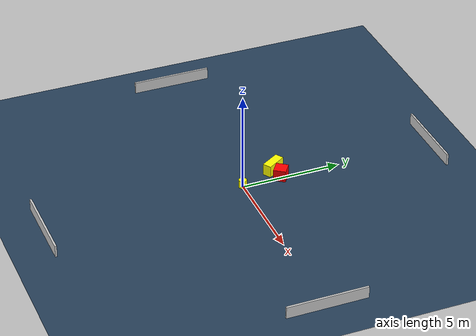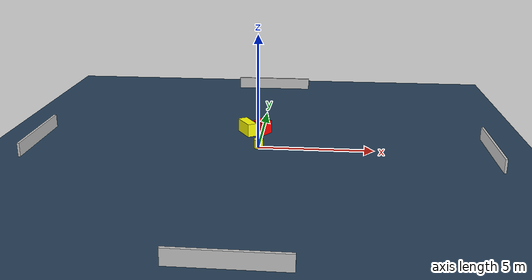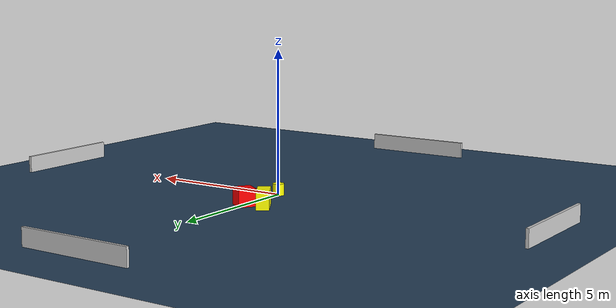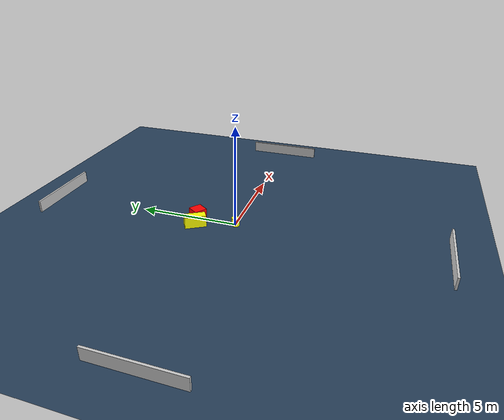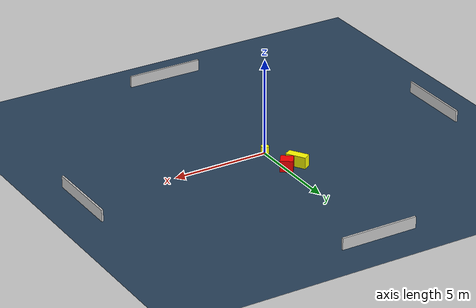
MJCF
<?xml version="1.0" ?>
<mujoco model="generated_environment">
  <option timestep="0.01" integrator="RK4" cone="elliptic"/>
  <default>
    <geom density="1"/>
  </default>
  <asset>
    <texture builtin="gradient" height="3072" name="skybox" rgb1="0.3 0.5 0.7" rgb2="0 0 0" type="skybox" width="512"/>
    <texture builtin="checker" height="300" name="groundplane" rgb1="0.2 0.3 0.4" rgb2="0.1 0.2 0.3" type="2d" width="300"/>
    <material name="groundplane" reflectance="0.2" texrepeat="5 5" texture="groundplane"/>
  </asset>
  <worldbody>
    <light dir="0 0 -1" directional="true" pos="0 0 1.5"/>
    <geom condim="3" friction="0.5 0.005 0.001" material="groundplane" name="floor" pos="0 0 0" size="0 0 0.05" type="plane"/>
    <body name="walls">
      <geom name="wall_1" condim="4" pos="-10.0 0.0 0.3" rgba="0.800000011920929 0.800000011920929 0.800000011920929 1.0" size="0.05 2.0 0.3" type="box"/>
      <geom name="wall_2" condim="4" pos="10.0 0.0 0.3" rgba="0.800000011920929 0.800000011920929 0.800000011920929 1.0" size="0.05 2.0 0.3" type="box"/>
      <geom name="wall_3" condim="4" pos="0.0 -10.0 0.3" rgba="0.800000011920929 0.800000011920929 0.800000011920929 1.0" size="2.0 0.05 0.3" type="box"/>
      <geom name="wall_4" condim="4" pos="0.0 10.0 0.3" rgba="0.800000011920929 0.800000011920929 0.800000011920929 1.0" size="2.0 0.05 0.3" type="box"/>
    </body>
    <body name="robot">
      <joint name="joint_x" type="slide" pos="0 0 0" axis="1 0 0"/>
      <joint name="joint_y" type="slide" pos="0 0 0" axis="0 1 0"/>
      <geom name="robot" type="cylinder" pos="0.0 0.0 0.2" size="0.2 0.2 0.0" mass="5.0" friction="1.0 0.005 0.0001" condim="4" rgba="1.0 1.0 0.0 1.0"/>
    </body>
    <body name="obstacle_1_movable">
      <geom name="obstacle_1_movable" condim="4" pos="-0.6936393900543945 1.8744132993694012 0.3" euler="0 0 31.90394328143813" friction="0.0 0.005 0.001" rgba="1.0 1.0 0.0 1.0" size="0.21975013382934838 0.5309637422230585 0.3" type="box" mass="0.1"/>
      <joint type="free"/>
    </body>
    <body name="obstacle_2_static">
      <geom name="obstacle_2_static" condim="4" pos="-0.015914880338459638 1.9993588592420026 0.3" euler="0 0 234.6974034936089" friction="0.0 0.005 0.001" rgba="1.0 0.0 0.0 1.0" size="0.30838566907821563 0.3229644870231977 0.3" type="box"/>
    </body>
  </worldbody>
  <actuator>
    <motor name="actuator_x" joint="joint_x" gear="1" ctrlrange="-1 1"/>
    <motor name="actuator_y" joint="joint_y" gear="1" ctrlrange="-1 1"/>
  </actuator>
</mujoco>
